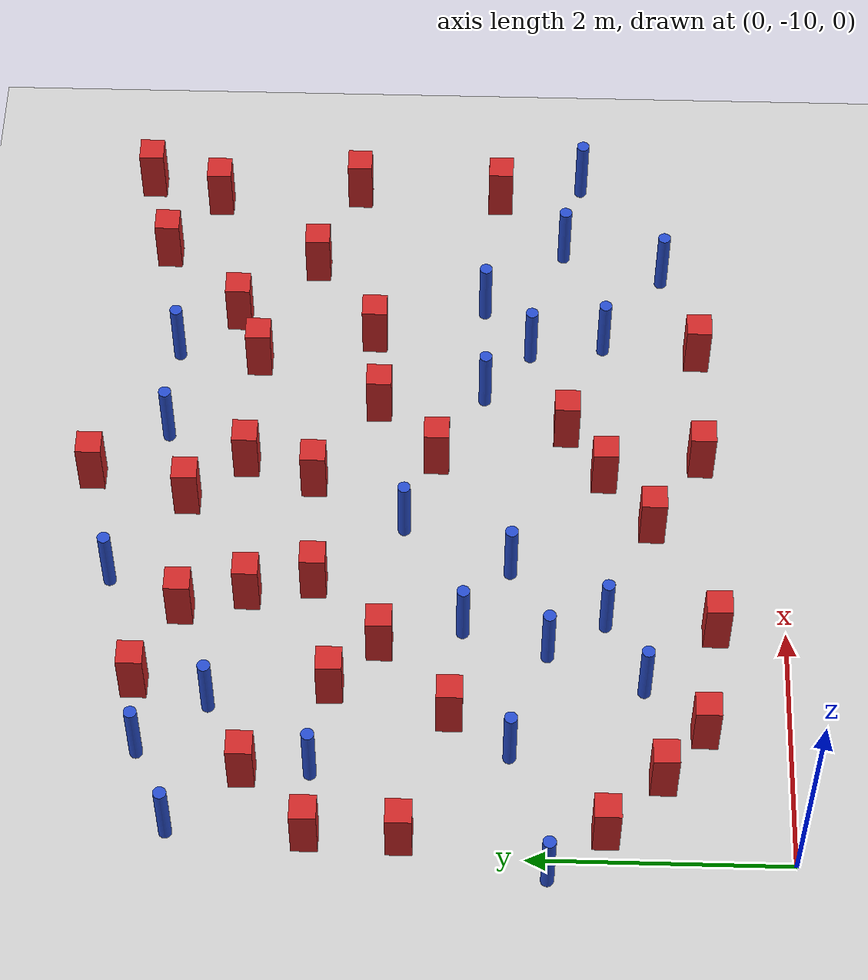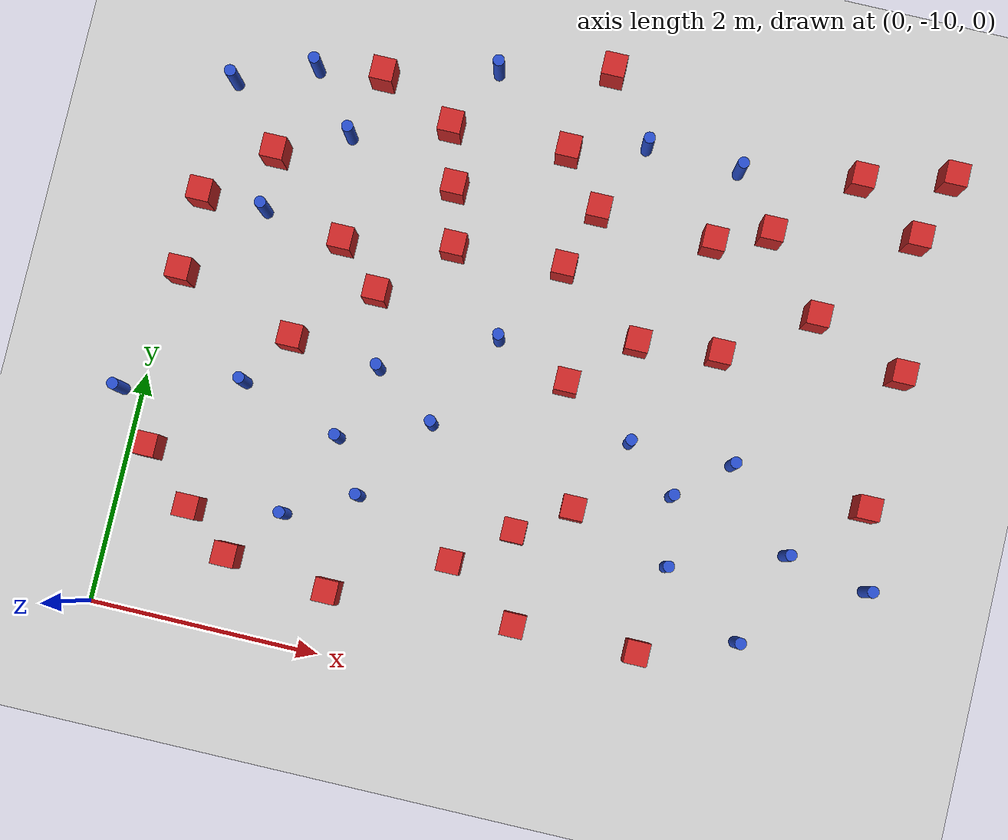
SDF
<sdf version="1.6">
 <world name="default">
  <model name="ground_plane">
   <static>1</static>
   <link name="link">
    <collision name="collision">
     <geometry><plane><normal>0 0 1</normal><size>100 100</size></plane></geometry>
     <surface><friction><ode><mu>100</mu><mu2>50</mu2></ode></friction></surface>
    </collision>
    <visual name="visual">
     <cast_shadows>0</cast_shadows>
     <geometry><plane><normal>0 0 1</normal><size>100 100</size></plane></geometry>
     <material>
      <ambient>1.0 1.0 1.0 1.0</ambient>
      <diffuse>0.8 0.8 0.8 1.0</diffuse>
      <specular>0.01 0.01 0.01 1.000000</specular>
     </material>
    </visual>
   </link>
  </model>
  <model name="pole_obstacle2">
   <static>true</static>
   <pose>5.08456096879 -7.63370993622 2.88873142074e-08 -9.90536690842e-09 4.60219948965e-07 -1.20965994976e-07</pose>
   <link name="link">
    <pose>0 0 0.3 0 -0 0</pose>
    <inertial>
     <mass>1</mass>
     <inertia><ixx>0.145833</ixx><ixy>0</ixy><ixz>0</ixz><iyy>0.145833</iyy><iyz>0</iyz><izz>0.125</izz></inertia>
    </inertial>
    <collision name="collision">
     <geometry><cylinder><radius>0.05</radius><length>.6</length></cylinder></geometry>
    </collision>
    <visual name="visual">
     <geometry><cylinder><radius>0.05</radius><length>.6</length></cylinder></geometry>
     <material>
      <script><name>Gazebo/Blue</name><uri>file://media/materials/scripts/gazebo.material</uri></script>
     </material>
    </visual>
   </link>
  </model>
  <model name="pole_obstacle3">
   <static>true</static>
   <pose>1.75412683638 -8.16297282722 2.88873142074e-08 -9.90536690474e-09 4.60219948974e-07 -1.2096599497e-07</pose>
   <link name="link">
    <pose>0 0 0.3 0 -0 0</pose>
    <inertial>
     <mass>1</mass>
     <inertia><ixx>0.145833</ixx><ixy>0</ixy><ixz>0</ixz><iyy>0.145833</iyy><iyz>0</iyz><izz>0.125</izz></inertia>
    </inertial>
    <collision name="collision">
     <geometry><cylinder><radius>0.05</radius><length>.6</length></cylinder></geometry>
    </collision>
    <visual name="visual">
     <geometry><cylinder><radius>0.05</radius><length>.6</length></cylinder></geometry>
     <material>
      <script><name>Gazebo/Blue</name><uri>file://media/materials/scripts/gazebo.material</uri></script>
     </material>
    </visual>
   </link>
  </model>
  <model name="square_post_obstacle12">
   <static>true</static>
   <pose>2.08199648702 -5.32711018315 8.22691968438e-08 7.22125133819e-06 -7.54495500217e-07 2.29674213826e-05</pose>
   <link name="link">
    <pose>0 0 0.25 0 -0 0</pose>
    <inertial>
     <mass>100</mass>
     <inertia>
      <ixx>0.166667</ixx>
      <ixy>0</ixy>
      <ixz>0</ixz>
      <iyy>0.166667</iyy>
      <iyz>0</iyz>
      <izz>0.166667</izz>
     </inertia>
    </inertial>
    <collision name="collision"><geometry><box><size>.2 .2 .5</size></box></geometry></collision>
    <visual name="visual">
     <geometry><box><size>.2 .2 .5</size></box></geometry>
     <material>
      <script><name>Gazebo/Red</name><uri>file://media/materials/scripts/gazebo.material</uri></script>
     </material>
    </visual>
   </link>
  </model>
  <model name="pole_obstacle12">
   <static>true</static>
   <pose>4.59260555785 -5.13864296964 2.88873142074e-08 -9.90536690842e-09 4.60219948965e-07 -1.20965994976e-07</pose>
   <link name="link">
    <pose>0 0 0.3 0 -0 0</pose>
    <inertial>
     <mass>1</mass>
     <inertia><ixx>0.145833</ixx><ixy>0</ixy><ixz>0</ixz><iyy>0.145833</iyy><iyz>0</iyz><izz>0.125</izz></inertia>
    </inertial>
    <collision name="collision">
     <geometry><cylinder><radius>0.05</radius><length>.6</length></cylinder></geometry>
    </collision>
    <visual name="visual">
     <geometry><cylinder><radius>0.05</radius><length>.6</length></cylinder></geometry>
     <material>
      <script><name>Gazebo/Blue</name><uri>file://media/materials/scripts/gazebo.material</uri></script>
     </material>
    </visual>
   </link>
  </model>
  <model name="pole_obstacle14">
   <static>true</static>
   <pose>4.6382872185 -8.01170287528 2.88873142074e-08 -9.9053669103e-09 4.60219948961e-07 -1.20965994981e-07</pose>
   <link name="link">
    <pose>0 0 0.3 0 -0 0</pose>
    <inertial>
     <mass>1</mass>
     <inertia><ixx>0.145833</ixx><ixy>0</ixy><ixz>0</ixz><iyy>0.145833</iyy><iyz>0</iyz><izz>0.125</izz></inertia>
    </inertial>
    <collision name="collision">
     <geometry><cylinder><radius>0.05</radius><length>.6</length></cylinder></geometry>
    </collision>
    <visual name="visual">
     <geometry><cylinder><radius>0.05</radius><length>.6</length></cylinder></geometry>
     <material>
      <script><name>Gazebo/Blue</name><uri>file://media/materials/scripts/gazebo.material</uri></script>
     </material>
    </visual>
   </link>
  </model>
  <model name="square_post_obstacle27">
   <static>true</static>
   <pose>6.31855076387 -6.55691355773 8.22691968438e-08 7.2212513382e-06 -7.54495500217e-07 2.29674213826e-05</pose>
   <link name="link">
    <pose>0 0 0.25 0 -0 0</pose>
    <inertial>
     <mass>100</mass>
     <inertia>
      <ixx>0.166667</ixx>
      <ixy>0</ixy>
      <ixz>0</ixz>
      <iyy>0.166667</iyy>
      <iyz>0</iyz>
      <izz>0.166667</izz>
     </inertia>
    </inertial>
    <collision name="collision"><geometry><box><size>.2 .2 .5</size></box></geometry></collision>
    <visual name="visual">
     <geometry><box><size>.2 .2 .5</size></box></geometry>
     <material>
      <script><name>Gazebo/Red</name><uri>file://media/materials/scripts/gazebo.material</uri></script>
     </material>
    </visual>
   </link>
  </model>
  <model name="square_post_obstacle28">
   <static>true</static>
   <pose>6.2045430175 -5.37990954067 8.22691968438e-08 7.2212513382e-06 -7.54495500217e-07 2.29674213826e-05</pose>
   <link name="link">
    <pose>0 0 0.25 0 -0 0</pose>
    <inertial>
     <mass>100</mass>
     <inertia>
      <ixx>0.166667</ixx>
      <ixy>0</ixy>
      <ixz>0</ixz>
      <iyy>0.166667</iyy>
      <iyz>0</iyz>
      <izz>0.166667</izz>
     </inertia>
    </inertial>
    <collision name="collision"><geometry><box><size>.2 .2 .5</size></box></geometry></collision>
    <visual name="visual">
     <geometry><box><size>.2 .2 .5</size></box></geometry>
     <material>
      <script><name>Gazebo/Red</name><uri>file://media/materials/scripts/gazebo.material</uri></script>
     </material>
    </visual>
   </link>
  </model>
  <model name="pole_obstacle19">
   <static>true</static>
   <pose>-0.158857970447 -8.16768017973 2.88873142074e-08 -9.90536690775e-09 4.60219948967e-07 -1.20965994977e-07</pose>
   <link name="link">
    <pose>0 0 0.3 0 -0 0</pose>
    <inertial>
     <mass>1</mass>
     <inertia><ixx>0.145833</ixx><ixy>0</ixy><ixz>0</ixz><iyy>0.145833</iyy><iyz>0</iyz><izz>0.125</izz></inertia>
    </inertial>
    <collision name="collision">
     <geometry><cylinder><radius>0.05</radius><length>.6</length></cylinder></geometry>
    </collision>
    <visual name="visual">
     <geometry><cylinder><radius>0.05</radius><length>.6</length></cylinder></geometry>
     <material>
      <script><name>Gazebo/Blue</name><uri>file://media/materials/scripts/gazebo.material</uri></script>
     </material>
    </visual>
   </link>
  </model>
  <model name="pole_obstacle21">
   <static>true</static>
   <pose>2.89959919793 -7.03133273233 2.88873142074e-08 -9.90536689859e-09 4.60219948989e-07 -1.20965994961e-07</pose>
   <link name="link">
    <pose>0 0 0.3 0 -0 0</pose>
    <inertial>
     <mass>1</mass>
     <inertia><ixx>0.145833</ixx><ixy>0</ixy><ixz>0</ixz><iyy>0.145833</iyy><iyz>0</iyz><izz>0.125</izz></inertia>
    </inertial>
    <collision name="collision">
     <geometry><cylinder><radius>0.05</radius><length>.6</length></cylinder></geometry>
    </collision>
    <visual name="visual">
     <geometry><cylinder><radius>0.05</radius><length>.6</length></cylinder></geometry>
     <material>
      <script><name>Gazebo/Blue</name><uri>file://media/materials/scripts/gazebo.material</uri></script>
     </material>
    </visual>
   </link>
  </model>
  <model name="pole_obstacle36">
   <static>true</static>
   <pose>2.03967492348 -8.60891214401 2.88873142074e-08 -9.90536692041e-09 4.60219948937e-07 -1.20965994983e-07</pose>
   <link name="link">
    <pose>0 0 0.3 0 -0 0</pose>
    <inertial>
     <mass>1</mass>
     <inertia><ixx>0.145833</ixx><ixy>0</ixy><ixz>0</ixz><iyy>0.145833</iyy><iyz>0</iyz><izz>0.125</izz></inertia>
    </inertial>
    <collision name="collision">
     <geometry><cylinder><radius>0.05</radius><length>.6</length></cylinder></geometry>
    </collision>
    <visual name="visual">
     <geometry><cylinder><radius>0.05</radius><length>.6</length></cylinder></geometry>
     <material>
      <script><name>Gazebo/Blue</name><uri>file://media/materials/scripts/gazebo.material</uri></script>
     </material>
    </visual>
   </link>
  </model>
  <model name="pole_obstacle38">
   <static>true</static>
   <pose>5.4468342084 -9.0923687689 2.88873142074e-08 -9.9053668967e-09 4.60219948993e-07 -1.20965994957e-07</pose>
   <link name="link">
    <pose>0 0 0.3 0 -0 0</pose>
    <inertial>
     <mass>1</mass>
     <inertia><ixx>0.145833</ixx><ixy>0</ixy><ixz>0</ixz><iyy>0.145833</iyy><iyz>0</iyz><izz>0.125</izz></inertia>
    </inertial>
    <collision name="collision">
     <geometry><cylinder><radius>0.05</radius><length>.6</length></cylinder></geometry>
    </collision>
    <visual name="visual">
     <geometry><cylinder><radius>0.05</radius><length>.6</length></cylinder></geometry>
     <material>
      <script><name>Gazebo/Blue</name><uri>file://media/materials/scripts/gazebo.material</uri></script>
     </material>
    </visual>
   </link>
  </model>
  <model name="pole_obstacle39">
   <static>true</static>
   <pose>2.36980002402 -4.7503796406 2.88873142074e-08 -9.90536689859e-09 4.60219948989e-07 -1.20965994961e-07</pose>
   <link name="link">
    <pose>0 0 0.3 0 -0 0</pose>
    <inertial>
     <mass>1</mass>
     <inertia><ixx>0.145833</ixx><ixy>0</ixy><ixz>0</ixz><iyy>0.145833</iyy><iyz>0</iyz><izz>0.125</izz></inertia>
    </inertial>
    <collision name="collision">
     <geometry><cylinder><radius>0.05</radius><length>.6</length></cylinder></geometry>
    </collision>
    <visual name="visual">
     <geometry><cylinder><radius>0.05</radius><length>.6</length></cylinder></geometry>
     <material>
      <script><name>Gazebo/Blue</name><uri>file://media/materials/scripts/gazebo.material</uri></script>
     </material>
    </visual>
   </link>
  </model>
  <model name="square_post_obstacle42">
   <static>true</static>
   <pose>1.78994212957 -6.8736493201 8.22691968438e-08 7.2212513382e-06 -7.54495500217e-07 2.29674213826e-05</pose>
   <link name="link">
    <pose>0 0 0.25 0 -0 0</pose>
    <inertial>
     <mass>100</mass>
     <inertia>
      <ixx>0.166667</ixx>
      <ixy>0</ixy>
      <ixz>0</ixz>
      <iyy>0.166667</iyy>
      <iyz>0</iyz>
      <izz>0.166667</izz>
     </inertia>
    </inertial>
    <collision name="collision"><geometry><box><size>.2 .2 .5</size></box></geometry></collision>
    <visual name="visual">
     <geometry><box><size>.2 .2 .5</size></box></geometry>
     <material>
      <script><name>Gazebo/Red</name><uri>file://media/materials/scripts/gazebo.material</uri></script>
     </material>
    </visual>
   </link>
  </model>
  <model name="square_post_obstacle45">
   <static>true</static>
   <pose>3.33868634564 -4.53766120623 8.22691968438e-08 7.2212513382e-06 -7.54495500217e-07 2.29674213826e-05</pose>
   <link name="link">
    <pose>0 0 0.25 0 -0 0</pose>
    <inertial>
     <mass>100</mass>
     <inertia>
      <ixx>0.166667</ixx>
      <ixy>0</ixy>
      <ixz>0</ixz>
      <iyy>0.166667</iyy>
      <iyz>0</iyz>
      <izz>0.166667</izz>
     </inertia>
    </inertial>
    <collision name="collision"><geometry><box><size>.2 .2 .5</size></box></geometry></collision>
    <visual name="visual">
     <geometry><box><size>.2 .2 .5</size></box></geometry>
     <material>
      <script><name>Gazebo/Red</name><uri>file://media/materials/scripts/gazebo.material</uri></script>
     </material>
    </visual>
   </link>
  </model>
  <model name="square_post_obstacle64">
   <static>true</static>
   <pose>6.26963851473 -7.7453628185 8.22691968438e-08 7.2212513382e-06 -7.54495500217e-07 2.29674213826e-05</pose>
   <link name="link">
    <pose>0 0 0.25 0 -0 0</pose>
    <inertial>
     <mass>100</mass>
     <inertia>
      <ixx>0.166667</ixx>
      <ixy>0</ixy>
      <ixz>0</ixz>
      <iyy>0.166667</iyy>
      <iyz>0</iyz>
      <izz>0.166667</izz>
     </inertia>
    </inertial>
    <collision name="collision"><geometry><box><size>.2 .2 .5</size></box></geometry></collision>
    <visual name="visual">
     <geometry><box><size>.2 .2 .5</size></box></geometry>
     <material>
      <script><name>Gazebo/Red</name><uri>file://media/materials/scripts/gazebo.material</uri></script>
     </material>
    </visual>
   </link>
  </model>
  <model name="square_post_obstacle70">
   <static>true</static>
   <pose>4.7691717081 -6.73499176411 8.22691968438e-08 7.2212513382e-06 -7.54495500217e-07 2.29674213826e-05</pose>
   <link name="link">
    <pose>0 0 0.25 0 -0 0</pose>
    <inertial>
     <mass>100</mass>
     <inertia>
      <ixx>0.166667</ixx>
      <ixy>0</ixy>
      <ixz>0</ixz>
      <iyy>0.166667</iyy>
      <iyz>0</iyz>
      <izz>0.166667</izz>
     </inertia>
    </inertial>
    <collision name="collision"><geometry><box><size>.2 .2 .5</size></box></geometry></collision>
    <visual name="visual">
     <geometry><box><size>.2 .2 .5</size></box></geometry>
     <material>
      <script><name>Gazebo/Red</name><uri>file://media/materials/scripts/gazebo.material</uri></script>
     </material>
    </visual>
   </link>
  </model>
  <model name="pole_obstacle68">
   <static>true</static>
   <pose>1.45679262684 -8.89997117126 2.88873142074e-08 -9.90536690474e-09 4.60219948974e-07 -1.2096599497e-07</pose>
   <link name="link">
    <pose>0 0 0.3 0 -0 0</pose>
    <inertial>
     <mass>1</mass>
     <inertia><ixx>0.145833</ixx><ixy>0</ixy><ixz>0</ixz><iyy>0.145833</iyy><iyz>0</iyz><izz>0.125</izz></inertia>
    </inertial>
    <collision name="collision">
     <geometry><cylinder><radius>0.05</radius><length>.6</length></cylinder></geometry>
    </collision>
    <visual name="visual">
     <geometry><cylinder><radius>0.05</radius><length>.6</length></cylinder></geometry>
     <material>
      <script><name>Gazebo/Blue</name><uri>file://media/materials/scripts/gazebo.material</uri></script>
     </material>
    </visual>
   </link>
  </model>
  <model name="square_post_obstacle74">
   <static>true</static>
   <pose>3.48431391606 -5.75668408351 8.22691968438e-08 7.22125133819e-06 -7.54495500217e-07 2.29674213826e-05</pose>
   <link name="link">
    <pose>0 0 0.25 0 -0 0</pose>
    <inertial>
     <mass>100</mass>
     <inertia>
      <ixx>0.166667</ixx>
      <ixy>0</ixy>
      <ixz>0</ixz>
      <iyy>0.166667</iyy>
      <iyz>0</iyz>
      <izz>0.166667</izz>
     </inertia>
    </inertial>
    <collision name="collision"><geometry><box><size>.2 .2 .5</size></box></geometry></collision>
    <visual name="visual">
     <geometry><box><size>.2 .2 .5</size></box></geometry>
     <material>
      <script><name>Gazebo/Red</name><uri>file://media/materials/scripts/gazebo.material</uri></script>
     </material>
    </visual>
   </link>
  </model>
  <model name="pole_obstacle91">
   <static>true</static>
   <pose>0.860186765136 -7.8807324589 2.88873142074e-08 -9.90536689661e-09 4.60219948993e-07 -1.20965994957e-07</pose>
   <link name="link">
    <pose>0 0 0.3 0 -0 0</pose>
    <inertial>
     <mass>1</mass>
     <inertia><ixx>0.145833</ixx><ixy>0</ixy><ixz>0</ixz><iyy>0.145833</iyy><iyz>0</iyz><izz>0.125</izz></inertia>
    </inertial>
    <collision name="collision">
     <geometry><cylinder><radius>0.05</radius><length>.6</length></cylinder></geometry>
    </collision>
    <visual name="visual">
     <geometry><cylinder><radius>0.05</radius><length>.6</length></cylinder></geometry>
     <material>
      <script><name>Gazebo/Blue</name><uri>file://media/materials/scripts/gazebo.material</uri></script>
     </material>
    </visual>
   </link>
  </model>
  <model name="pole_obstacle93">
   <static>true</static>
   <pose>0.165270659776 -5.35138399877 2.88873142074e-08 -9.90536689843e-09 4.60219948989e-07 -1.20965994962e-07</pose>
   <link name="link">
    <pose>0 0 0.3 0 -0 0</pose>
    <inertial>
     <mass>1</mass>
     <inertia><ixx>0.145833</ixx><ixy>0</ixy><ixz>0</ixz><iyy>0.145833</iyy><iyz>0</iyz><izz>0.125</izz></inertia>
    </inertial>
    <collision name="collision">
     <geometry><cylinder><radius>0.05</radius><length>.6</length></cylinder></geometry>
    </collision>
    <visual name="visual">
     <geometry><cylinder><radius>0.05</radius><length>.6</length></cylinder></geometry>
     <material>
      <script><name>Gazebo/Blue</name><uri>file://media/materials/scripts/gazebo.material</uri></script>
     </material>
    </visual>
   </link>
  </model>
  <model name="pole_obstacle94">
   <static>true</static>
   <pose>1.24744567327 -5.59371761984 2.88873142074e-08 -9.90536689852e-09 4.60219948989e-07 -1.2096599496e-07</pose>
   <link name="link">
    <pose>0 0 0.3 0 -0 0</pose>
    <inertial>
     <mass>1</mass>
     <inertia><ixx>0.145833</ixx><ixy>0</ixy><ixz>0</ixz><iyy>0.145833</iyy><iyz>0</iyz><izz>0.125</izz></inertia>
    </inertial>
    <collision name="collision">
     <geometry><cylinder><radius>0.05</radius><length>.6</length></cylinder></geometry>
    </collision>
    <visual name="visual">
     <geometry><cylinder><radius>0.05</radius><length>.6</length></cylinder></geometry>
     <material>
      <script><name>Gazebo/Blue</name><uri>file://media/materials/scripts/gazebo.material</uri></script>
     </material>
    </visual>
   </link>
  </model>
  <model name="square_post_obstacle83">
   <static>true</static>
   <pose>3.84332965228 -8.30442204718 8.22691968438e-08 7.22125133819e-06 -7.54495500217e-07 2.29674213826e-05</pose>
   <link name="link">
    <pose>0 0 0.25 0 -0 0</pose>
    <inertial>
     <mass>100</mass>
     <inertia>
      <ixx>0.166667</ixx>
      <ixy>0</ixy>
      <ixz>0</ixz>
      <iyy>0.166667</iyy>
      <iyz>0</iyz>
      <izz>0.166667</izz>
     </inertia>
    </inertial>
    <collision name="collision"><geometry><box><size>.2 .2 .5</size></box></geometry></collision>
    <visual name="visual">
     <geometry><box><size>.2 .2 .5</size></box></geometry>
     <material>
      <script><name>Gazebo/Red</name><uri>file://media/materials/scripts/gazebo.material</uri></script>
     </material>
    </visual>
   </link>
  </model>
  <model name="square_post_obstacle88">
   <static>true</static>
   <pose>4.97159506406 -5.61189561609 8.22691968438e-08 7.2212513382e-06 -7.54495500217e-07 2.29674213826e-05</pose>
   <link name="link">
    <pose>0 0 0.25 0 -0 0</pose>
    <inertial>
     <mass>100</mass>
     <inertia>
      <ixx>0.166667</ixx>
      <ixy>0</ixy>
      <ixz>0</ixz>
      <iyy>0.166667</iyy>
      <iyz>0</iyz>
      <izz>0.166667</izz>
     </inertia>
    </inertial>
    <collision name="collision"><geometry><box><size>.2 .2 .5</size></box></geometry></collision>
    <visual name="visual">
     <geometry><box><size>.2 .2 .5</size></box></geometry>
     <material>
      <script><name>Gazebo/Red</name><uri>file://media/materials/scripts/gazebo.material</uri></script>
     </material>
    </visual>
   </link>
  </model>
  <model name="square_post_obstacle89">
   <static>true</static>
   <pose>1.40093092092 -6.51251049695 8.22691968438e-08 7.2212513382e-06 -7.54495500217e-07 2.29674213826e-05</pose>
   <link name="link">
    <pose>0 0 0.25 0 -0 0</pose>
    <inertial>
     <mass>100</mass>
     <inertia>
      <ixx>0.166667</ixx>
      <ixy>0</ixy>
      <ixz>0</ixz>
      <iyy>0.166667</iyy>
      <iyz>0</iyz>
      <izz>0.166667</izz>
     </inertia>
    </inertial>
    <collision name="collision"><geometry><box><size>.2 .2 .5</size></box></geometry></collision>
    <visual name="visual">
     <geometry><box><size>.2 .2 .5</size></box></geometry>
     <material>
      <script><name>Gazebo/Red</name><uri>file://media/materials/scripts/gazebo.material</uri></script>
     </material>
    </visual>
   </link>
  </model>
  <model name="square_post_obstacle91">
   <static>true</static>
   <pose>0.666963303196 -9.02663923928 8.22691968438e-08 7.22125133819e-06 -7.54495500217e-07 2.29674213826e-05</pose>
   <link name="link">
    <pose>0 0 0.25 0 -0 0</pose>
    <inertial>
     <mass>100</mass>
     <inertia>
      <ixx>0.166667</ixx>
      <ixy>0</ixy>
      <ixz>0</ixz>
      <iyy>0.166667</iyy>
      <iyz>0</iyz>
      <izz>0.166667</izz>
     </inertia>
    </inertial>
    <collision name="collision"><geometry><box><size>.2 .2 .5</size></box></geometry></collision>
    <visual name="visual">
     <geometry><box><size>.2 .2 .5</size></box></geometry>
     <material>
      <script><name>Gazebo/Red</name><uri>file://media/materials/scripts/gazebo.material</uri></script>
     </material>
    </visual>
   </link>
  </model>
  <model name="square_post_obstacle93">
   <static>true</static>
   <pose>3.30666758993 -6.30322572811 8.22691968438e-08 7.2212513382e-06 -7.54495500217e-07 2.29674213826e-05</pose>
   <link name="link">
    <pose>0 0 0.25 0 -0 0</pose>
    <inertial>
     <mass>100</mass>
     <inertia>
      <ixx>0.166667</ixx>
      <ixy>0</ixy>
      <ixz>0</ixz>
      <iyy>0.166667</iyy>
      <iyz>0</iyz>
      <izz>0.166667</izz>
     </inertia>
    </inertial>
    <collision name="collision"><geometry><box><size>.2 .2 .5</size></box></geometry></collision>
    <visual name="visual">
     <geometry><box><size>.2 .2 .5</size></box></geometry>
     <material>
      <script><name>Gazebo/Red</name><uri>file://media/materials/scripts/gazebo.material</uri></script>
     </material>
    </visual>
   </link>
  </model>
  <model name="pole_obstacle108">
   <static>true</static>
   <pose>3.7688159767 -5.11059443281 2.88873142074e-08 -9.90536689859e-09 4.60219948989e-07 -1.20965994961e-07</pose>
   <link name="link">
    <pose>0 0 0.3 0 -0 0</pose>
    <inertial>
     <mass>1</mass>
     <inertia><ixx>0.145833</ixx><ixy>0</ixy><ixz>0</ixz><iyy>0.145833</iyy><iyz>0</iyz><izz>0.125</izz></inertia>
    </inertial>
    <collision name="collision">
     <geometry><cylinder><radius>0.05</radius><length>.6</length></cylinder></geometry>
    </collision>
    <visual name="visual">
     <geometry><cylinder><radius>0.05</radius><length>.6</length></cylinder></geometry>
     <material>
      <script><name>Gazebo/Blue</name><uri>file://media/materials/scripts/gazebo.material</uri></script>
     </material>
    </visual>
   </link>
  </model>
  <model name="square_post_obstacle103">
   <static>true</static>
   <pose>4.50506117388 -5.80295721641 8.22691968438e-08 7.2212513382e-06 -7.54495500217e-07 2.29674213826e-05</pose>
   <link name="link">
    <pose>0 0 0.25 0 -0 0</pose>
    <inertial>
     <mass>100</mass>
     <inertia>
      <ixx>0.166667</ixx>
      <ixy>0</ixy>
      <ixz>0</ixz>
      <iyy>0.166667</iyy>
      <iyz>0</iyz>
      <izz>0.166667</izz>
     </inertia>
    </inertial>
    <collision name="collision"><geometry><box><size>.2 .2 .5</size></box></geometry></collision>
    <visual name="visual">
     <geometry><box><size>.2 .2 .5</size></box></geometry>
     <material>
      <script><name>Gazebo/Red</name><uri>file://media/materials/scripts/gazebo.material</uri></script>
     </material>
    </visual>
   </link>
  </model>
  <model name="square_post_obstacle114">
   <static>true</static>
   <pose>1.07763960706 -9.3470259652 8.22691968438e-08 7.22125133819e-06 -7.54495500217e-07 2.29674213826e-05</pose>
   <link name="link">
    <pose>0 0 0.25 0 -0 0</pose>
    <inertial>
     <mass>100</mass>
     <inertia>
      <ixx>0.166667</ixx>
      <ixy>0</ixy>
      <ixz>0</ixz>
      <iyy>0.166667</iyy>
      <iyz>0</iyz>
      <izz>0.166667</izz>
     </inertia>
    </inertial>
    <collision name="collision"><geometry><box><size>.2 .2 .5</size></box></geometry></collision>
    <visual name="visual">
     <geometry><box><size>.2 .2 .5</size></box></geometry>
     <material>
      <script><name>Gazebo/Red</name><uri>file://media/materials/scripts/gazebo.material</uri></script>
     </material>
    </visual>
   </link>
  </model>
  <model name="pole_obstacle133">
   <static>true</static>
   <pose>5.6978535348 -8.28352682406 2.88873142074e-08 -9.9053668967e-09 4.60219948993e-07 -1.20965994957e-07</pose>
   <link name="link">
    <pose>0 0 0.3 0 -0 0</pose>
    <inertial>
     <mass>1</mass>
     <inertia><ixx>0.145833</ixx><ixy>0</ixy><ixz>0</ixz><iyy>0.145833</iyy><iyz>0</iyz><izz>0.125</izz></inertia>
    </inertial>
    <collision name="collision">
     <geometry><cylinder><radius>0.05</radius><length>.6</length></cylinder></geometry>
    </collision>
    <visual name="visual">
     <geometry><cylinder><radius>0.05</radius><length>.6</length></cylinder></geometry>
     <material>
      <script><name>Gazebo/Blue</name><uri>file://media/materials/scripts/gazebo.material</uri></script>
     </material>
    </visual>
   </link>
  </model>
  <model name="square_post_obstacle116">
   <static>true</static>
   <pose>0.11939934738 -7.07684972299 8.22691968438e-08 7.2212513382e-06 -7.54495500217e-07 2.29674213826e-05</pose>
   <link name="link">
    <pose>0 0 0.25 0 -0 0</pose>
    <inertial>
     <mass>100</mass>
     <inertia>
      <ixx>0.166667</ixx>
      <ixy>0</ixy>
      <ixz>0</ixz>
      <iyy>0.166667</iyy>
      <iyz>0</iyz>
      <izz>0.166667</izz>
     </inertia>
    </inertial>
    <collision name="collision"><geometry><box><size>.2 .2 .5</size></box></geometry></collision>
    <visual name="visual">
     <geometry><box><size>.2 .2 .5</size></box></geometry>
     <material>
      <script><name>Gazebo/Red</name><uri>file://media/materials/scripts/gazebo.material</uri></script>
     </material>
    </visual>
   </link>
  </model>
  <model name="square_post_obstacle121">
   <static>true</static>
   <pose>6.39315484974 -4.79696522952 8.22691968438e-08 7.22125133819e-06 -7.54495500217e-07 2.29674213826e-05</pose>
   <link name="link">
    <pose>0 0 0.25 0 -0 0</pose>
    <inertial>
     <mass>100</mass>
     <inertia>
      <ixx>0.166667</ixx>
      <ixy>0</ixy>
      <ixz>0</ixz>
      <iyy>0.166667</iyy>
      <iyz>0</iyz>
      <izz>0.166667</izz>
     </inertia>
    </inertial>
    <collision name="collision"><geometry><box><size>.2 .2 .5</size></box></geometry></collision>
    <visual name="visual">
     <geometry><box><size>.2 .2 .5</size></box></geometry>
     <material>
      <script><name>Gazebo/Red</name><uri>file://media/materials/scripts/gazebo.material</uri></script>
     </material>
    </visual>
   </link>
  </model>
  <model name="pole_obstacle140">
   <static>true</static>
   <pose>4.18798467229 -7.64521818971 2.88873142074e-08 -9.90536690842e-09 4.60219948965e-07 -1.20965994976e-07</pose>
   <link name="link">
    <pose>0 0 0.3 0 -0 0</pose>
    <inertial>
     <mass>1</mass>
     <inertia><ixx>0.145833</ixx><ixy>0</ixy><ixz>0</ixz><iyy>0.145833</iyy><iyz>0</iyz><izz>0.125</izz></inertia>
    </inertial>
    <collision name="collision">
     <geometry><cylinder><radius>0.05</radius><length>.6</length></cylinder></geometry>
    </collision>
    <visual name="visual">
     <geometry><cylinder><radius>0.05</radius><length>.6</length></cylinder></geometry>
     <material>
      <script><name>Gazebo/Blue</name><uri>file://media/materials/scripts/gazebo.material</uri></script>
     </material>
    </visual>
   </link>
  </model>
  <model name="square_post_obstacle146">
   <static>true</static>
   <pose>2.93050909259 -8.97675729415 8.22691968438e-08 7.22125133819e-06 -7.54495500217e-07 2.29674213826e-05</pose>
   <link name="link">
    <pose>0 0 0.25 0 -0 0</pose>
    <inertial>
     <mass>100</mass>
     <inertia>
      <ixx>0.166667</ixx>
      <ixy>0</ixy>
      <ixz>0</ixz>
      <iyy>0.166667</iyy>
      <iyz>0</iyz>
      <izz>0.166667</izz>
     </inertia>
    </inertial>
    <collision name="collision"><geometry><box><size>.2 .2 .5</size></box></geometry></collision>
    <visual name="visual">
     <geometry><box><size>.2 .2 .5</size></box></geometry>
     <material>
      <script><name>Gazebo/Red</name><uri>file://media/materials/scripts/gazebo.material</uri></script>
     </material>
    </visual>
   </link>
  </model>
  <model name="square_post_obstacle151">
   <static>true</static>
   <pose>2.34719089243 -6.34549784389 8.22691968438e-08 7.2212513382e-06 -7.54495500217e-07 2.29674213826e-05</pose>
   <link name="link">
    <pose>0 0 0.25 0 -0 0</pose>
    <inertial>
     <mass>100</mass>
     <inertia>
      <ixx>0.166667</ixx>
      <ixy>0</ixy>
      <ixz>0</ixz>
      <iyy>0.166667</iyy>
      <iyz>0</iyz>
      <izz>0.166667</izz>
     </inertia>
    </inertial>
    <collision name="collision"><geometry><box><size>.2 .2 .5</size></box></geometry></collision>
    <visual name="visual">
     <geometry><box><size>.2 .2 .5</size></box></geometry>
     <material>
      <script><name>Gazebo/Red</name><uri>file://media/materials/scripts/gazebo.material</uri></script>
     </material>
    </visual>
   </link>
  </model>
  <model name="pole_obstacle157">
   <static>true</static>
   <pose>0.833313896384 -5.0818024871 2.88873142074e-08 -9.90536689661e-09 4.60219948993e-07 -1.20965994957e-07</pose>
   <link name="link">
    <pose>0 0 0.3 0 -0 0</pose>
    <inertial>
     <mass>1</mass>
     <inertia><ixx>0.145833</ixx><ixy>0</ixy><ixz>0</ixz><iyy>0.145833</iyy><iyz>0</iyz><izz>0.125</izz></inertia>
    </inertial>
    <collision name="collision">
     <geometry><cylinder><radius>0.05</radius><length>.6</length></cylinder></geometry>
    </collision>
    <visual name="visual">
     <geometry><cylinder><radius>0.05</radius><length>.6</length></cylinder></geometry>
     <material>
      <script><name>Gazebo/Blue</name><uri>file://media/materials/scripts/gazebo.material</uri></script>
     </material>
    </visual>
   </link>
  </model>
  <model name="square_post_obstacle159">
   <static>true</static>
   <pose>0.133387124605 -6.38254228882 8.22691968438e-08 7.22125133819e-06 -7.54495500217e-07 2.29674213826e-05</pose>
   <link name="link">
    <pose>0 0 0.25 0 -0 0</pose>
    <inertial>
     <mass>100</mass>
     <inertia>
      <ixx>0.166667</ixx>
      <ixy>0</ixy>
      <ixz>0</ixz>
      <iyy>0.166667</iyy>
      <iyz>0</iyz>
      <izz>0.166667</izz>
     </inertia>
    </inertial>
    <collision name="collision"><geometry><box><size>.2 .2 .5</size></box></geometry></collision>
    <visual name="visual">
     <geometry><box><size>.2 .2 .5</size></box></geometry>
     <material>
      <script><name>Gazebo/Red</name><uri>file://media/materials/scripts/gazebo.material</uri></script>
     </material>
    </visual>
   </link>
  </model>
  <model name="pole_obstacle168">
   <static>true</static>
   <pose>0.681908246261 -6.3933589706 2.88873142074e-08 -9.90536689661e-09 4.60219948993e-07 -1.20965994957e-07</pose>
   <link name="link">
    <pose>0 0 0.3 0 -0 0</pose>
    <inertial>
     <mass>1</mass>
     <inertia><ixx>0.145833</ixx><ixy>0</ixy><ixz>0</ixz><iyy>0.145833</iyy><iyz>0</iyz><izz>0.125</izz></inertia>
    </inertial>
    <collision name="collision">
     <geometry><cylinder><radius>0.05</radius><length>.6</length></cylinder></geometry>
    </collision>
    <visual name="visual">
     <geometry><cylinder><radius>0.05</radius><length>.6</length></cylinder></geometry>
     <material>
      <script><name>Gazebo/Blue</name><uri>file://media/materials/scripts/gazebo.material</uri></script>
     </material>
    </visual>
   </link>
  </model>
  <model name="pole_obstacle169">
   <static>true</static>
   <pose>2.50848370232 -7.87094238203 2.88873142074e-08 -9.90536689859e-09 4.60219948989e-07 -1.20965994961e-07</pose>
   <link name="link">
    <pose>0 0 0.3 0 -0 0</pose>
    <inertial>
     <mass>1</mass>
     <inertia><ixx>0.145833</ixx><ixy>0</ixy><ixz>0</ixz><iyy>0.145833</iyy><iyz>0</iyz><izz>0.125</izz></inertia>
    </inertial>
    <collision name="collision">
     <geometry><cylinder><radius>0.05</radius><length>.6</length></cylinder></geometry>
    </collision>
    <visual name="visual">
     <geometry><cylinder><radius>0.05</radius><length>.6</length></cylinder></geometry>
     <material>
      <script><name>Gazebo/Blue</name><uri>file://media/materials/scripts/gazebo.material</uri></script>
     </material>
    </visual>
   </link>
  </model>
  <model name="square_post_obstacle162">
   <static>true</static>
   <pose>5.62723211769 -4.98485852016 8.22691968438e-08 7.22125133819e-06 -7.54495500217e-07 2.29674213826e-05</pose>
   <link name="link">
    <pose>0 0 0.25 0 -0 0</pose>
    <inertial>
     <mass>100</mass>
     <inertia>
      <ixx>0.166667</ixx>
      <ixy>0</ixy>
      <ixz>0</ixz>
      <iyy>0.166667</iyy>
      <iyz>0</iyz>
      <izz>0.166667</izz>
     </inertia>
    </inertial>
    <collision name="collision"><geometry><box><size>.2 .2 .5</size></box></geometry></collision>
    <visual name="visual">
     <geometry><box><size>.2 .2 .5</size></box></geometry>
     <material>
      <script><name>Gazebo/Red</name><uri>file://media/materials/scripts/gazebo.material</uri></script>
     </material>
    </visual>
   </link>
  </model>
  <model name="square_post_obstacle165">
   <static>true</static>
   <pose>3.55198603795 -7.26903708166 8.22691968438e-08 7.2212513382e-06 -7.54495500217e-07 2.29674213826e-05</pose>
   <link name="link">
    <pose>0 0 0.25 0 -0 0</pose>
    <inertial>
     <mass>100</mass>
     <inertia>
      <ixx>0.166667</ixx>
      <ixy>0</ixy>
      <ixz>0</ixz>
      <iyy>0.166667</iyy>
      <iyz>0</iyz>
      <izz>0.166667</izz>
     </inertia>
    </inertial>
    <collision name="collision"><geometry><box><size>.2 .2 .5</size></box></geometry></collision>
    <visual name="visual">
     <geometry><box><size>.2 .2 .5</size></box></geometry>
     <material>
      <script><name>Gazebo/Red</name><uri>file://media/materials/scripts/gazebo.material</uri></script>
     </material>
    </visual>
   </link>
  </model>
  <model name="square_post_obstacle166">
   <static>true</static>
   <pose>4.63388197657 -9.36508051795 8.22691968438e-08 7.22125133819e-06 -7.54495500217e-07 2.29674213826e-05</pose>
   <link name="link">
    <pose>0 0 0.25 0 -0 0</pose>
    <inertial>
     <mass>100</mass>
     <inertia>
      <ixx>0.166667</ixx>
      <ixy>0</ixy>
      <ixz>0</ixz>
      <iyy>0.166667</iyy>
      <iyz>0</iyz>
      <izz>0.166667</izz>
     </inertia>
    </inertial>
    <collision name="collision"><geometry><box><size>.2 .2 .5</size></box></geometry></collision>
    <visual name="visual">
     <geometry><box><size>.2 .2 .5</size></box></geometry>
     <material>
      <script><name>Gazebo/Red</name><uri>file://media/materials/scripts/gazebo.material</uri></script>
     </material>
    </visual>
   </link>
  </model>
  <model name="pole_obstacle180">
   <static>true</static>
   <pose>1.95595023659 -7.50954176721 2.88873142074e-08 -9.9053668918e-09 4.60219949005e-07 -1.20965994951e-07</pose>
   <link name="link">
    <pose>0 0 0.3 0 -0 0</pose>
    <inertial>
     <mass>1</mass>
     <inertia><ixx>0.145833</ixx><ixy>0</ixy><ixz>0</ixz><iyy>0.145833</iyy><iyz>0</iyz><izz>0.125</izz></inertia>
    </inertial>
    <collision name="collision">
     <geometry><cylinder><radius>0.05</radius><length>.6</length></cylinder></geometry>
    </collision>
    <visual name="visual">
     <geometry><cylinder><radius>0.05</radius><length>.6</length></cylinder></geometry>
     <material>
      <script><name>Gazebo/Blue</name><uri>file://media/materials/scripts/gazebo.material</uri></script>
     </material>
    </visual>
   </link>
  </model>
  <model name="square_post_obstacle172">
   <static>true</static>
   <pose>5.50745664348 -6.23787388265 8.22691968438e-08 7.2212513382e-06 -7.54495500217e-07 2.29674213826e-05</pose>
   <link name="link">
    <pose>0 0 0.25 0 -0 0</pose>
    <inertial>
     <mass>100</mass>
     <inertia>
      <ixx>0.166667</ixx>
      <ixy>0</ixy>
      <ixz>0</ixz>
      <iyy>0.166667</iyy>
      <iyz>0</iyz>
      <izz>0.166667</izz>
     </inertia>
    </inertial>
    <collision name="collision"><geometry><box><size>.2 .2 .5</size></box></geometry></collision>
    <visual name="visual">
     <geometry><box><size>.2 .2 .5</size></box></geometry>
     <material>
      <script><name>Gazebo/Red</name><uri>file://media/materials/scripts/gazebo.material</uri></script>
     </material>
    </visual>
   </link>
  </model>
  <model name="square_post_obstacle178">
   <static>true</static>
   <pose>1.41329926701 -5.02008132366 8.22691968438e-08 7.2212513382e-06 -7.54495500217e-07 2.29674213826e-05</pose>
   <link name="link">
    <pose>0 0 0.25 0 -0 0</pose>
    <inertial>
     <mass>100</mass>
     <inertia>
      <ixx>0.166667</ixx>
      <ixy>0</ixy>
      <ixz>0</ixz>
      <iyy>0.166667</iyy>
      <iyz>0</iyz>
      <izz>0.166667</izz>
     </inertia>
    </inertial>
    <collision name="collision"><geometry><box><size>.2 .2 .5</size></box></geometry></collision>
    <visual name="visual">
     <geometry><box><size>.2 .2 .5</size></box></geometry>
     <material>
      <script><name>Gazebo/Red</name><uri>file://media/materials/scripts/gazebo.material</uri></script>
     </material>
    </visual>
   </link>
  </model>
  <model name="square_post_obstacle180">
   <static>true</static>
   <pose>3.39973231764 -8.60439596847 8.22691968438e-08 7.22125133819e-06 -7.54495500217e-07 2.29674213826e-05</pose>
   <link name="link">
    <pose>0 0 0.25 0 -0 0</pose>
    <inertial>
     <mass>100</mass>
     <inertia>
      <ixx>0.166667</ixx>
      <ixy>0</ixy>
      <ixz>0</ixz>
      <iyy>0.166667</iyy>
      <iyz>0</iyz>
      <izz>0.166667</izz>
     </inertia>
    </inertial>
    <collision name="collision"><geometry><box><size>.2 .2 .5</size></box></geometry></collision>
    <visual name="visual">
     <geometry><box><size>.2 .2 .5</size></box></geometry>
     <material>
      <script><name>Gazebo/Red</name><uri>file://media/materials/scripts/gazebo.material</uri></script>
     </material>
    </visual>
   </link>
  </model>
  <model name="square_post_obstacle181">
   <static>true</static>
   <pose>3.11353149929 -5.30717495073 8.22691968438e-08 7.2212513382e-06 -7.54495500217e-07 2.29674213826e-05</pose>
   <link name="link">
    <pose>0 0 0.25 0 -0 0</pose>
    <inertial>
     <mass>100</mass>
     <inertia>
      <ixx>0.166667</ixx>
      <ixy>0</ixy>
      <ixz>0</ixz>
      <iyy>0.166667</iyy>
      <iyz>0</iyz>
      <izz>0.166667</izz>
     </inertia>
    </inertial>
    <collision name="collision"><geometry><box><size>.2 .2 .5</size></box></geometry></collision>
    <visual name="visual">
     <geometry><box><size>.2 .2 .5</size></box></geometry>
     <material>
      <script><name>Gazebo/Red</name><uri>file://media/materials/scripts/gazebo.material</uri></script>
     </material>
    </visual>
   </link>
  </model>
  <model name="square_post_obstacle187">
   <static>true</static>
   <pose>3.57077267252 -9.37452354767 8.22691968438e-08 7.22125133819e-06 -7.54495500217e-07 2.29674213826e-05</pose>
   <link name="link">
    <pose>0 0 0.25 0 -0 0</pose>
    <inertial>
     <mass>100</mass>
     <inertia>
      <ixx>0.166667</ixx>
      <ixy>0</ixy>
      <ixz>0</ixz>
      <iyy>0.166667</iyy>
      <iyz>0</iyz>
      <izz>0.166667</izz>
     </inertia>
    </inertial>
    <collision name="collision"><geometry><box><size>.2 .2 .5</size></box></geometry></collision>
    <visual name="visual">
     <geometry><box><size>.2 .2 .5</size></box></geometry>
     <material>
      <script><name>Gazebo/Red</name><uri>file://media/materials/scripts/gazebo.material</uri></script>
     </material>
    </visual>
   </link>
  </model>
  <model name="square_post_obstacle188">
   <static>true</static>
   <pose>0.203836030699 -8.59566058686 8.22691968438e-08 7.22125133819e-06 -7.54495500217e-07 2.29674213826e-05</pose>
   <link name="link">
    <pose>0 0 0.25 0 -0 0</pose>
    <inertial>
     <mass>100</mass>
     <inertia>
      <ixx>0.166667</ixx>
      <ixy>0</ixy>
      <ixz>0</ixz>
      <iyy>0.166667</iyy>
      <iyz>0</iyz>
      <izz>0.166667</izz>
     </inertia>
    </inertial>
    <collision name="collision"><geometry><box><size>.2 .2 .5</size></box></geometry></collision>
    <visual name="visual">
     <geometry><box><size>.2 .2 .5</size></box></geometry>
     <material>
      <script><name>Gazebo/Red</name><uri>file://media/materials/scripts/gazebo.material</uri></script>
     </material>
    </visual>
   </link>
  </model>
  <model name="square_post_obstacle195">
   <static>true</static>
   <pose>4.06187727813 -6.79560458837 8.22691968438e-08 7.2212513382e-06 -7.54495500217e-07 2.29674213826e-05</pose>
   <link name="link">
    <pose>0 0 0.25 0 -0 0</pose>
    <inertial>
     <mass>100</mass>
     <inertia>
      <ixx>0.166667</ixx>
      <ixy>0</ixy>
      <ixz>0</ixz>
      <iyy>0.166667</iyy>
      <iyz>0</iyz>
      <izz>0.166667</izz>
     </inertia>
    </inertial>
    <collision name="collision"><geometry><box><size>.2 .2 .5</size></box></geometry></collision>
    <visual name="visual">
     <geometry><box><size>.2 .2 .5</size></box></geometry>
     <material>
      <script><name>Gazebo/Red</name><uri>file://media/materials/scripts/gazebo.material</uri></script>
     </material>
    </visual>
   </link>
  </model>
  <model name="square_post_obstacle202">
   <static>true</static>
   <pose>2.22979824854 -5.8370255934 8.22691968438e-08 7.2212513382e-06 -7.54495500217e-07 2.29674213826e-05</pose>
   <link name="link">
    <pose>0 0 0.25 0 -0 0</pose>
    <inertial>
     <mass>100</mass>
     <inertia>
      <ixx>0.166667</ixx>
      <ixy>0</ixy>
      <ixz>0</ixz>
      <iyy>0.166667</iyy>
      <iyz>0</iyz>
      <izz>0.166667</izz>
     </inertia>
    </inertial>
    <collision name="collision"><geometry><box><size>.2 .2 .5</size></box></geometry></collision>
    <visual name="visual">
     <geometry><box><size>.2 .2 .5</size></box></geometry>
     <material>
      <script><name>Gazebo/Red</name><uri>file://media/materials/scripts/gazebo.material</uri></script>
     </material>
    </visual>
   </link>
  </model>
  <model name="pole_obstacle194">
   <static>true</static>
   <pose>6.42739013352 -8.42765588639 2.88873142074e-08 -9.9053668967e-09 4.60219948993e-07 -1.20965994957e-07</pose>
   <link name="link">
    <pose>0 0 0.3 0 -0 0</pose>
    <inertial>
     <mass>1</mass>
     <inertia><ixx>0.145833</ixx><ixy>0</ixy><ixz>0</ixz><iyy>0.145833</iyy><iyz>0</iyz><izz>0.125</izz></inertia>
    </inertial>
    <collision name="collision">
     <geometry><cylinder><radius>0.05</radius><length>.6</length></cylinder></geometry>
    </collision>
    <visual name="visual">
     <geometry><cylinder><radius>0.05</radius><length>.6</length></cylinder></geometry>
     <material>
      <script><name>Gazebo/Blue</name><uri>file://media/materials/scripts/gazebo.material</uri></script>
     </material>
    </visual>
   </link>
  </model>
  <model name="pole_obstacle195">
   <static>true</static>
   <pose>4.72603985581 -8.60585533337 2.88873142074e-08 -9.9053668967e-09 4.60219948993e-07 -1.20965994957e-07</pose>
   <link name="link">
    <pose>0 0 0.3 0 -0 0</pose>
    <inertial>
     <mass>1</mass>
     <inertia><ixx>0.145833</ixx><ixy>0</ixy><ixz>0</ixz><iyy>0.145833</iyy><iyz>0</iyz><izz>0.125</izz></inertia>
    </inertial>
    <collision name="collision">
     <geometry><cylinder><radius>0.05</radius><length>.6</length></cylinder></geometry>
    </collision>
    <visual name="visual">
     <geometry><cylinder><radius>0.05</radius><length>.6</length></cylinder></geometry>
     <material>
      <script><name>Gazebo/Blue</name><uri>file://media/materials/scripts/gazebo.material</uri></script>
     </material>
    </visual>
   </link>
  </model>
  <model name="square_post_obstacle209">
   <static>true</static>
   <pose>1.17754108209 -7.4228620552 8.22691968438e-08 7.2212513382e-06 -7.54495500217e-07 2.29674213826e-05</pose>
   <link name="link">
    <pose>0 0 0.25 0 -0 0</pose>
    <inertial>
     <mass>100</mass>
     <inertia>
      <ixx>0.166667</ixx>
      <ixy>0</ixy>
      <ixz>0</ixz>
      <iyy>0.166667</iyy>
      <iyz>0</iyz>
      <izz>0.166667</izz>
     </inertia>
    </inertial>
    <collision name="collision"><geometry><box><size>.2 .2 .5</size></box></geometry></collision>
    <visual name="visual">
     <geometry><box><size>.2 .2 .5</size></box></geometry>
     <material>
      <script><name>Gazebo/Red</name><uri>file://media/materials/scripts/gazebo.material</uri></script>
     </material>
    </visual>
   </link>
  </model>
  <model name="square_post_obstacle212">
   <static>true</static>
   <pose>1.97530069488 -9.45348645213 8.22691968438e-08 7.22125133819e-06 -7.54495500217e-07 2.29674213826e-05</pose>
   <link name="link">
    <pose>0 0 0.25 0 -0 0</pose>
    <inertial>
     <mass>100</mass>
     <inertia>
      <ixx>0.166667</ixx>
      <ixy>0</ixy>
      <ixz>0</ixz>
      <iyy>0.166667</iyy>
      <iyz>0</iyz>
      <izz>0.166667</izz>
     </inertia>
    </inertial>
    <collision name="collision"><geometry><box><size>.2 .2 .5</size></box></geometry></collision>
    <visual name="visual">
     <geometry><box><size>.2 .2 .5</size></box></geometry>
     <material>
      <script><name>Gazebo/Red</name><uri>file://media/materials/scripts/gazebo.material</uri></script>
     </material>
    </visual>
   </link>
  </model>
  <model name="square_post_obstacle247">
   <static>true</static>
   <pose>0.659409032622 -5.88839003534 8.22691968438e-08 7.22125133819e-06 -7.54495500217e-07 2.29674213826e-05</pose>
   <link name="link">
    <pose>0 0 0.25 0 -0 0</pose>
    <inertial>
     <mass>100</mass>
     <inertia>
      <ixx>0.166667</ixx>
      <ixy>0</ixy>
      <ixz>0</ixz>
      <iyy>0.166667</iyy>
      <iyz>0</iyz>
      <izz>0.166667</izz>
     </inertia>
    </inertial>
    <collision name="collision"><geometry><box><size>.2 .2 .5</size></box></geometry></collision>
    <visual name="visual">
     <geometry><box><size>.2 .2 .5</size></box></geometry>
     <material>
      <script><name>Gazebo/Red</name><uri>file://media/materials/scripts/gazebo.material</uri></script>
     </material>
    </visual>
   </link>
  </model>
 </world>
</sdf>
